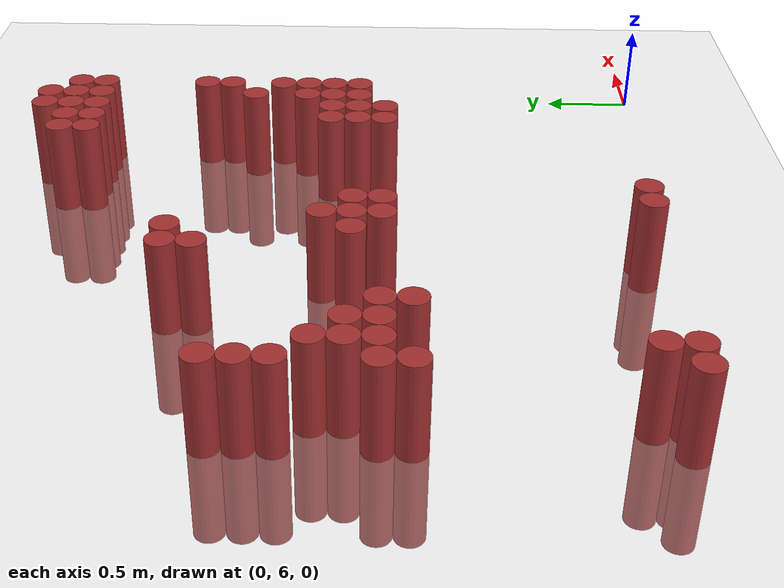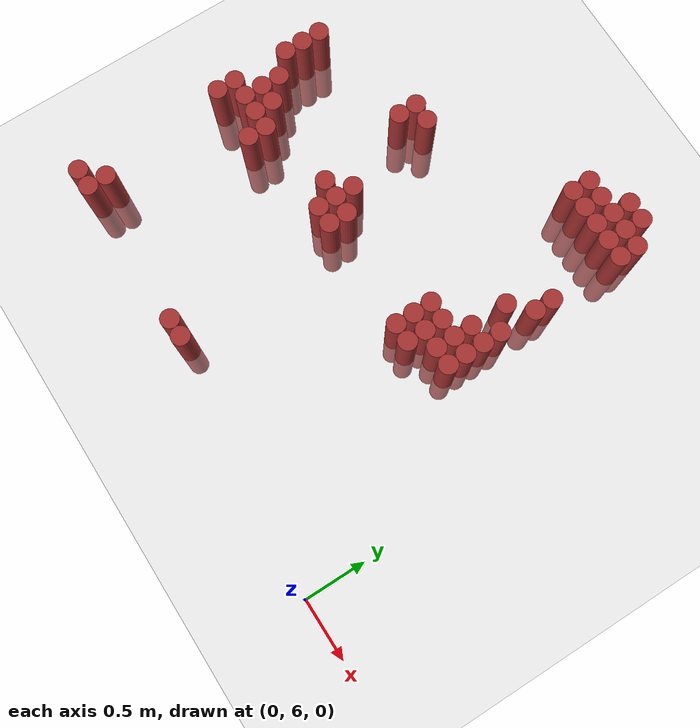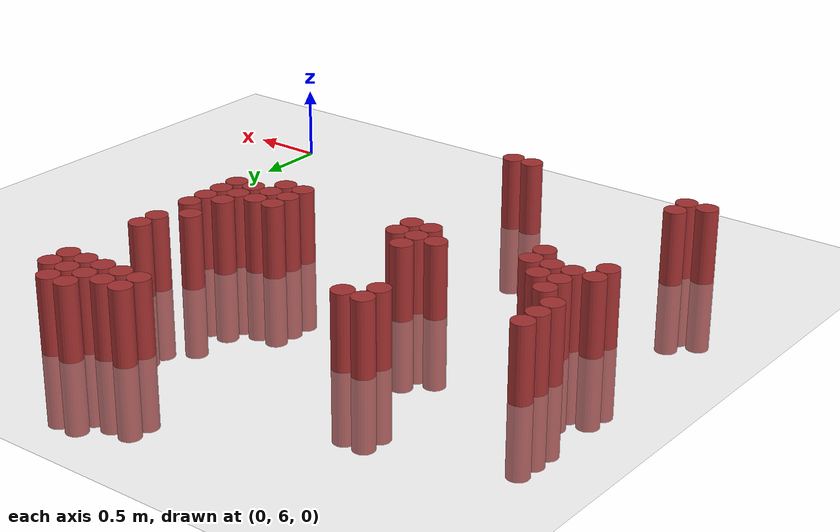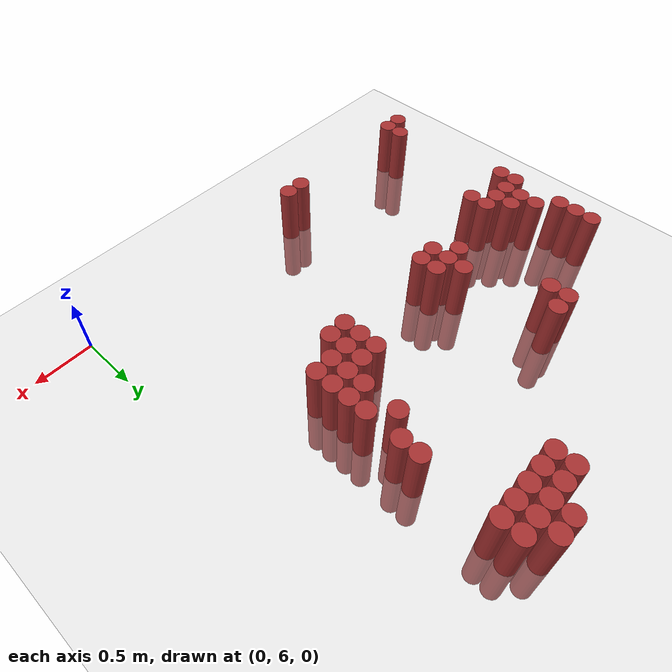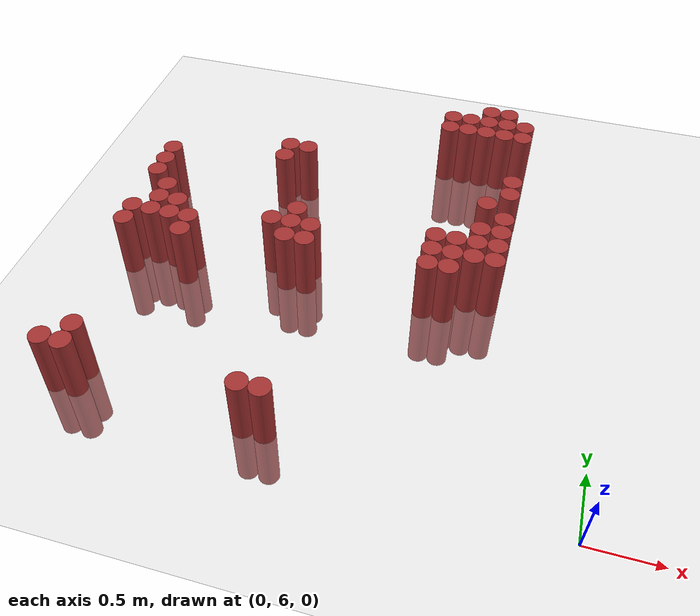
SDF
<sdf version="1.6">
 <world name="default">
  <model name="ground_plane">
   <static>1</static>
   <link name="link">
    <collision name="collision">
     <geometry><plane><normal>0 0 1</normal><size>100 100</size></plane></geometry>
     <surface><friction><ode><mu>100</mu><mu2>50</mu2></ode></friction></surface>
    </collision>
    <visual name="visual">
     <cast_shadows>0</cast_shadows>
     <geometry><plane><normal>0 0 1</normal><size>100 100</size></plane></geometry>
     <material>
      <script><uri>file://media/materials/scripts/gazebo.material</uri><name>Gazebo/Grey</name></script>
     </material>
    </visual>
   </link>
  </model>
  <model name="unit_cylinder_181">
   <static>1</static>
   <pose>-3.525000 6.225000 0.000000 0.000000 0.000000 0.000000</pose>
   <link name="link">
    <inertial>
     <mass>1</mass>
     <inertia><ixx>0.145833</ixx><ixy>0</ixy><ixz>0</ixz><iyy>0.145833</iyy><iyz>0</iyz><izz>0.125</izz></inertia>
    </inertial>
    <collision name="collision">
     <geometry><cylinder><radius>0.075000</radius><length>1</length></cylinder></geometry>
    </collision>
    <visual name="visual">
     <geometry><cylinder><radius>0.075000</radius><length>1</length></cylinder></geometry>
     <material>
      <ambient>0.648000 0.192000 0.192000 1</ambient>
      <diffuse>0.648000 0.192000 0.192000 1</diffuse>
     </material>
     <material>
      <script><name>Gazebo/Grey</name><uri>file://media/materials/scripts/gazebo.material</uri></script>
     </material>
    </visual>
   </link>
  </model>
  <model name="unit_cylinder_182">
   <static>1</static>
   <pose>-3.525000 7.425000 0.000000 0.000000 0.000000 0.000000</pose>
   <link name="link">
    <inertial>
     <mass>1</mass>
     <inertia><ixx>0.145833</ixx><ixy>0</ixy><ixz>0</ixz><iyy>0.145833</iyy><iyz>0</iyz><izz>0.125</izz></inertia>
    </inertial>
    <collision name="collision">
     <geometry><cylinder><radius>0.075000</radius><length>1</length></cylinder></geometry>
    </collision>
    <visual name="visual">
     <geometry><cylinder><radius>0.075000</radius><length>1</length></cylinder></geometry>
     <material>
      <ambient>0.648000 0.192000 0.192000 1</ambient>
      <diffuse>0.648000 0.192000 0.192000 1</diffuse>
     </material>
     <material>
      <script><name>Gazebo/Grey</name><uri>file://media/materials/scripts/gazebo.material</uri></script>
     </material>
    </visual>
   </link>
  </model>
  <model name="unit_cylinder_183">
   <static>1</static>
   <pose>-3.525000 7.575000 0.000000 0.000000 0.000000 0.000000</pose>
   <link name="link">
    <inertial>
     <mass>1</mass>
     <inertia><ixx>0.145833</ixx><ixy>0</ixy><ixz>0</ixz><iyy>0.145833</iyy><iyz>0</iyz><izz>0.125</izz></inertia>
    </inertial>
    <collision name="collision">
     <geometry><cylinder><radius>0.075000</radius><length>1</length></cylinder></geometry>
    </collision>
    <visual name="visual">
     <geometry><cylinder><radius>0.075000</radius><length>1</length></cylinder></geometry>
     <material>
      <ambient>0.648000 0.192000 0.192000 1</ambient>
      <diffuse>0.648000 0.192000 0.192000 1</diffuse>
     </material>
     <material>
      <script><name>Gazebo/Grey</name><uri>file://media/materials/scripts/gazebo.material</uri></script>
     </material>
    </visual>
   </link>
  </model>
  <model name="unit_cylinder_184">
   <static>1</static>
   <pose>-3.525000 8.025000 0.000000 0.000000 0.000000 0.000000</pose>
   <link name="link">
    <inertial>
     <mass>1</mass>
     <inertia><ixx>0.145833</ixx><ixy>0</ixy><ixz>0</ixz><iyy>0.145833</iyy><iyz>0</iyz><izz>0.125</izz></inertia>
    </inertial>
    <collision name="collision">
     <geometry><cylinder><radius>0.075000</radius><length>1</length></cylinder></geometry>
    </collision>
    <visual name="visual">
     <geometry><cylinder><radius>0.075000</radius><length>1</length></cylinder></geometry>
     <material>
      <ambient>0.648000 0.192000 0.192000 1</ambient>
      <diffuse>0.648000 0.192000 0.192000 1</diffuse>
     </material>
     <material>
      <script><name>Gazebo/Grey</name><uri>file://media/materials/scripts/gazebo.material</uri></script>
     </material>
    </visual>
   </link>
  </model>
  <model name="unit_cylinder_185">
   <static>1</static>
   <pose>-3.525000 8.175000 0.000000 0.000000 0.000000 0.000000</pose>
   <link name="link">
    <inertial>
     <mass>1</mass>
     <inertia><ixx>0.145833</ixx><ixy>0</ixy><ixz>0</ixz><iyy>0.145833</iyy><iyz>0</iyz><izz>0.125</izz></inertia>
    </inertial>
    <collision name="collision">
     <geometry><cylinder><radius>0.075000</radius><length>1</length></cylinder></geometry>
    </collision>
    <visual name="visual">
     <geometry><cylinder><radius>0.075000</radius><length>1</length></cylinder></geometry>
     <material>
      <ambient>0.648000 0.192000 0.192000 1</ambient>
      <diffuse>0.648000 0.192000 0.192000 1</diffuse>
     </material>
     <material>
      <script><name>Gazebo/Grey</name><uri>file://media/materials/scripts/gazebo.material</uri></script>
     </material>
    </visual>
   </link>
  </model>
  <model name="unit_cylinder_186">
   <static>1</static>
   <pose>-3.525000 8.325000 0.000000 0.000000 0.000000 0.000000</pose>
   <link name="link">
    <inertial>
     <mass>1</mass>
     <inertia><ixx>0.145833</ixx><ixy>0</ixy><ixz>0</ixz><iyy>0.145833</iyy><iyz>0</iyz><izz>0.125</izz></inertia>
    </inertial>
    <collision name="collision">
     <geometry><cylinder><radius>0.075000</radius><length>1</length></cylinder></geometry>
    </collision>
    <visual name="visual">
     <geometry><cylinder><radius>0.075000</radius><length>1</length></cylinder></geometry>
     <material>
      <ambient>0.648000 0.192000 0.192000 1</ambient>
      <diffuse>0.648000 0.192000 0.192000 1</diffuse>
     </material>
     <material>
      <script><name>Gazebo/Grey</name><uri>file://media/materials/scripts/gazebo.material</uri></script>
     </material>
    </visual>
   </link>
  </model>
  <model name="unit_cylinder_188">
   <static>1</static>
   <pose>-3.375000 6.225000 0.000000 0.000000 0.000000 0.000000</pose>
   <link name="link">
    <inertial>
     <mass>1</mass>
     <inertia><ixx>0.145833</ixx><ixy>0</ixy><ixz>0</ixz><iyy>0.145833</iyy><iyz>0</iyz><izz>0.125</izz></inertia>
    </inertial>
    <collision name="collision">
     <geometry><cylinder><radius>0.075000</radius><length>1</length></cylinder></geometry>
    </collision>
    <visual name="visual">
     <geometry><cylinder><radius>0.075000</radius><length>1</length></cylinder></geometry>
     <material>
      <ambient>0.648000 0.192000 0.192000 1</ambient>
      <diffuse>0.648000 0.192000 0.192000 1</diffuse>
     </material>
     <material>
      <script><name>Gazebo/Grey</name><uri>file://media/materials/scripts/gazebo.material</uri></script>
     </material>
    </visual>
   </link>
  </model>
  <model name="unit_cylinder_189">
   <static>1</static>
   <pose>-3.375000 6.375000 0.000000 0.000000 0.000000 0.000000</pose>
   <link name="link">
    <inertial>
     <mass>1</mass>
     <inertia><ixx>0.145833</ixx><ixy>0</ixy><ixz>0</ixz><iyy>0.145833</iyy><iyz>0</iyz><izz>0.125</izz></inertia>
    </inertial>
    <collision name="collision">
     <geometry><cylinder><radius>0.075000</radius><length>1</length></cylinder></geometry>
    </collision>
    <visual name="visual">
     <geometry><cylinder><radius>0.075000</radius><length>1</length></cylinder></geometry>
     <material>
      <ambient>0.648000 0.192000 0.192000 1</ambient>
      <diffuse>0.648000 0.192000 0.192000 1</diffuse>
     </material>
     <material>
      <script><name>Gazebo/Grey</name><uri>file://media/materials/scripts/gazebo.material</uri></script>
     </material>
    </visual>
   </link>
  </model>
  <model name="unit_cylinder_190">
   <static>1</static>
   <pose>-3.375000 7.575000 0.000000 0.000000 0.000000 0.000000</pose>
   <link name="link">
    <inertial>
     <mass>1</mass>
     <inertia><ixx>0.145833</ixx><ixy>0</ixy><ixz>0</ixz><iyy>0.145833</iyy><iyz>0</iyz><izz>0.125</izz></inertia>
    </inertial>
    <collision name="collision">
     <geometry><cylinder><radius>0.075000</radius><length>1</length></cylinder></geometry>
    </collision>
    <visual name="visual">
     <geometry><cylinder><radius>0.075000</radius><length>1</length></cylinder></geometry>
     <material>
      <ambient>0.648000 0.192000 0.192000 1</ambient>
      <diffuse>0.648000 0.192000 0.192000 1</diffuse>
     </material>
     <material>
      <script><name>Gazebo/Grey</name><uri>file://media/materials/scripts/gazebo.material</uri></script>
     </material>
    </visual>
   </link>
  </model>
  <model name="unit_cylinder_191">
   <static>1</static>
   <pose>-3.375000 7.725000 0.000000 0.000000 0.000000 0.000000</pose>
   <link name="link">
    <inertial>
     <mass>1</mass>
     <inertia><ixx>0.145833</ixx><ixy>0</ixy><ixz>0</ixz><iyy>0.145833</iyy><iyz>0</iyz><izz>0.125</izz></inertia>
    </inertial>
    <collision name="collision">
     <geometry><cylinder><radius>0.075000</radius><length>1</length></cylinder></geometry>
    </collision>
    <visual name="visual">
     <geometry><cylinder><radius>0.075000</radius><length>1</length></cylinder></geometry>
     <material>
      <ambient>0.648000 0.192000 0.192000 1</ambient>
      <diffuse>0.648000 0.192000 0.192000 1</diffuse>
     </material>
     <material>
      <script><name>Gazebo/Grey</name><uri>file://media/materials/scripts/gazebo.material</uri></script>
     </material>
    </visual>
   </link>
  </model>
  <model name="unit_cylinder_192">
   <static>1</static>
   <pose>-3.375000 7.875000 0.000000 0.000000 0.000000 0.000000</pose>
   <link name="link">
    <inertial>
     <mass>1</mass>
     <inertia><ixx>0.145833</ixx><ixy>0</ixy><ixz>0</ixz><iyy>0.145833</iyy><iyz>0</iyz><izz>0.125</izz></inertia>
    </inertial>
    <collision name="collision">
     <geometry><cylinder><radius>0.075000</radius><length>1</length></cylinder></geometry>
    </collision>
    <visual name="visual">
     <geometry><cylinder><radius>0.075000</radius><length>1</length></cylinder></geometry>
     <material>
      <ambient>0.648000 0.192000 0.192000 1</ambient>
      <diffuse>0.648000 0.192000 0.192000 1</diffuse>
     </material>
     <material>
      <script><name>Gazebo/Grey</name><uri>file://media/materials/scripts/gazebo.material</uri></script>
     </material>
    </visual>
   </link>
  </model>
  <model name="unit_cylinder_193">
   <static>1</static>
   <pose>-3.225000 7.575000 0.000000 0.000000 0.000000 0.000000</pose>
   <link name="link">
    <inertial>
     <mass>1</mass>
     <inertia><ixx>0.145833</ixx><ixy>0</ixy><ixz>0</ixz><iyy>0.145833</iyy><iyz>0</iyz><izz>0.125</izz></inertia>
    </inertial>
    <collision name="collision">
     <geometry><cylinder><radius>0.075000</radius><length>1</length></cylinder></geometry>
    </collision>
    <visual name="visual">
     <geometry><cylinder><radius>0.075000</radius><length>1</length></cylinder></geometry>
     <material>
      <ambient>0.648000 0.192000 0.192000 1</ambient>
      <diffuse>0.648000 0.192000 0.192000 1</diffuse>
     </material>
     <material>
      <script><name>Gazebo/Grey</name><uri>file://media/materials/scripts/gazebo.material</uri></script>
     </material>
    </visual>
   </link>
  </model>
  <model name="unit_cylinder_194">
   <static>1</static>
   <pose>-3.225000 7.725000 0.000000 0.000000 0.000000 0.000000</pose>
   <link name="link">
    <inertial>
     <mass>1</mass>
     <inertia><ixx>0.145833</ixx><ixy>0</ixy><ixz>0</ixz><iyy>0.145833</iyy><iyz>0</iyz><izz>0.125</izz></inertia>
    </inertial>
    <collision name="collision">
     <geometry><cylinder><radius>0.075000</radius><length>1</length></cylinder></geometry>
    </collision>
    <visual name="visual">
     <geometry><cylinder><radius>0.075000</radius><length>1</length></cylinder></geometry>
     <material>
      <ambient>0.648000 0.192000 0.192000 1</ambient>
      <diffuse>0.648000 0.192000 0.192000 1</diffuse>
     </material>
     <material>
      <script><name>Gazebo/Grey</name><uri>file://media/materials/scripts/gazebo.material</uri></script>
     </material>
    </visual>
   </link>
  </model>
  <model name="unit_cylinder_195">
   <static>1</static>
   <pose>-3.075000 7.425000 0.000000 0.000000 0.000000 0.000000</pose>
   <link name="link">
    <inertial>
     <mass>1</mass>
     <inertia><ixx>0.145833</ixx><ixy>0</ixy><ixz>0</ixz><iyy>0.145833</iyy><iyz>0</iyz><izz>0.125</izz></inertia>
    </inertial>
    <collision name="collision">
     <geometry><cylinder><radius>0.075000</radius><length>1</length></cylinder></geometry>
    </collision>
    <visual name="visual">
     <geometry><cylinder><radius>0.075000</radius><length>1</length></cylinder></geometry>
     <material>
      <ambient>0.648000 0.192000 0.192000 1</ambient>
      <diffuse>0.648000 0.192000 0.192000 1</diffuse>
     </material>
     <material>
      <script><name>Gazebo/Grey</name><uri>file://media/materials/scripts/gazebo.material</uri></script>
     </material>
    </visual>
   </link>
  </model>
  <model name="unit_cylinder_196">
   <static>1</static>
   <pose>-3.075000 7.575000 0.000000 0.000000 0.000000 0.000000</pose>
   <link name="link">
    <inertial>
     <mass>1</mass>
     <inertia><ixx>0.145833</ixx><ixy>0</ixy><ixz>0</ixz><iyy>0.145833</iyy><iyz>0</iyz><izz>0.125</izz></inertia>
    </inertial>
    <collision name="collision">
     <geometry><cylinder><radius>0.075000</radius><length>1</length></cylinder></geometry>
    </collision>
    <visual name="visual">
     <geometry><cylinder><radius>0.075000</radius><length>1</length></cylinder></geometry>
     <material>
      <ambient>0.648000 0.192000 0.192000 1</ambient>
      <diffuse>0.648000 0.192000 0.192000 1</diffuse>
     </material>
     <material>
      <script><name>Gazebo/Grey</name><uri>file://media/materials/scripts/gazebo.material</uri></script>
     </material>
    </visual>
   </link>
  </model>
  <model name="unit_cylinder_201">
   <static>1</static>
   <pose>-2.625000 8.475000 0.000000 0.000000 0.000000 0.000000</pose>
   <link name="link">
    <inertial>
     <mass>1</mass>
     <inertia><ixx>0.145833</ixx><ixy>0</ixy><ixz>0</ixz><iyy>0.145833</iyy><iyz>0</iyz><izz>0.125</izz></inertia>
    </inertial>
    <collision name="collision">
     <geometry><cylinder><radius>0.075000</radius><length>1</length></cylinder></geometry>
    </collision>
    <visual name="visual">
     <geometry><cylinder><radius>0.075000</radius><length>1</length></cylinder></geometry>
     <material>
      <ambient>0.648000 0.192000 0.192000 1</ambient>
      <diffuse>0.648000 0.192000 0.192000 1</diffuse>
     </material>
     <material>
      <script><name>Gazebo/Grey</name><uri>file://media/materials/scripts/gazebo.material</uri></script>
     </material>
    </visual>
   </link>
  </model>
  <model name="unit_cylinder_202">
   <static>1</static>
   <pose>-2.625000 8.625000 0.000000 0.000000 0.000000 0.000000</pose>
   <link name="link">
    <inertial>
     <mass>1</mass>
     <inertia><ixx>0.145833</ixx><ixy>0</ixy><ixz>0</ixz><iyy>0.145833</iyy><iyz>0</iyz><izz>0.125</izz></inertia>
    </inertial>
    <collision name="collision">
     <geometry><cylinder><radius>0.075000</radius><length>1</length></cylinder></geometry>
    </collision>
    <visual name="visual">
     <geometry><cylinder><radius>0.075000</radius><length>1</length></cylinder></geometry>
     <material>
      <ambient>0.648000 0.192000 0.192000 1</ambient>
      <diffuse>0.648000 0.192000 0.192000 1</diffuse>
     </material>
     <material>
      <script><name>Gazebo/Grey</name><uri>file://media/materials/scripts/gazebo.material</uri></script>
     </material>
    </visual>
   </link>
  </model>
  <model name="unit_cylinder_203">
   <static>1</static>
   <pose>-2.475000 7.725000 0.000000 0.000000 0.000000 0.000000</pose>
   <link name="link">
    <inertial>
     <mass>1</mass>
     <inertia><ixx>0.145833</ixx><ixy>0</ixy><ixz>0</ixz><iyy>0.145833</iyy><iyz>0</iyz><izz>0.125</izz></inertia>
    </inertial>
    <collision name="collision">
     <geometry><cylinder><radius>0.075000</radius><length>1</length></cylinder></geometry>
    </collision>
    <visual name="visual">
     <geometry><cylinder><radius>0.075000</radius><length>1</length></cylinder></geometry>
     <material>
      <ambient>0.648000 0.192000 0.192000 1</ambient>
      <diffuse>0.648000 0.192000 0.192000 1</diffuse>
     </material>
     <material>
      <script><name>Gazebo/Grey</name><uri>file://media/materials/scripts/gazebo.material</uri></script>
     </material>
    </visual>
   </link>
  </model>
  <model name="unit_cylinder_204">
   <static>1</static>
   <pose>-2.475000 8.625000 0.000000 0.000000 0.000000 0.000000</pose>
   <link name="link">
    <inertial>
     <mass>1</mass>
     <inertia><ixx>0.145833</ixx><ixy>0</ixy><ixz>0</ixz><iyy>0.145833</iyy><iyz>0</iyz><izz>0.125</izz></inertia>
    </inertial>
    <collision name="collision">
     <geometry><cylinder><radius>0.075000</radius><length>1</length></cylinder></geometry>
    </collision>
    <visual name="visual">
     <geometry><cylinder><radius>0.075000</radius><length>1</length></cylinder></geometry>
     <material>
      <ambient>0.648000 0.192000 0.192000 1</ambient>
      <diffuse>0.648000 0.192000 0.192000 1</diffuse>
     </material>
     <material>
      <script><name>Gazebo/Grey</name><uri>file://media/materials/scripts/gazebo.material</uri></script>
     </material>
    </visual>
   </link>
  </model>
  <model name="unit_cylinder_208">
   <static>1</static>
   <pose>-2.325000 7.575000 0.000000 0.000000 0.000000 0.000000</pose>
   <link name="link">
    <inertial>
     <mass>1</mass>
     <inertia><ixx>0.145833</ixx><ixy>0</ixy><ixz>0</ixz><iyy>0.145833</iyy><iyz>0</iyz><izz>0.125</izz></inertia>
    </inertial>
    <collision name="collision">
     <geometry><cylinder><radius>0.075000</radius><length>1</length></cylinder></geometry>
    </collision>
    <visual name="visual">
     <geometry><cylinder><radius>0.075000</radius><length>1</length></cylinder></geometry>
     <material>
      <ambient>0.648000 0.192000 0.192000 1</ambient>
      <diffuse>0.648000 0.192000 0.192000 1</diffuse>
     </material>
     <material>
      <script><name>Gazebo/Grey</name><uri>file://media/materials/scripts/gazebo.material</uri></script>
     </material>
    </visual>
   </link>
  </model>
  <model name="unit_cylinder_209">
   <static>1</static>
   <pose>-2.325000 7.725000 0.000000 0.000000 0.000000 0.000000</pose>
   <link name="link">
    <inertial>
     <mass>1</mass>
     <inertia><ixx>0.145833</ixx><ixy>0</ixy><ixz>0</ixz><iyy>0.145833</iyy><iyz>0</iyz><izz>0.125</izz></inertia>
    </inertial>
    <collision name="collision">
     <geometry><cylinder><radius>0.075000</radius><length>1</length></cylinder></geometry>
    </collision>
    <visual name="visual">
     <geometry><cylinder><radius>0.075000</radius><length>1</length></cylinder></geometry>
     <material>
      <ambient>0.648000 0.192000 0.192000 1</ambient>
      <diffuse>0.648000 0.192000 0.192000 1</diffuse>
     </material>
     <material>
      <script><name>Gazebo/Grey</name><uri>file://media/materials/scripts/gazebo.material</uri></script>
     </material>
    </visual>
   </link>
  </model>
  <model name="unit_cylinder_210">
   <static>1</static>
   <pose>-2.325000 7.875000 0.000000 0.000000 0.000000 0.000000</pose>
   <link name="link">
    <inertial>
     <mass>1</mass>
     <inertia><ixx>0.145833</ixx><ixy>0</ixy><ixz>0</ixz><iyy>0.145833</iyy><iyz>0</iyz><izz>0.125</izz></inertia>
    </inertial>
    <collision name="collision">
     <geometry><cylinder><radius>0.075000</radius><length>1</length></cylinder></geometry>
    </collision>
    <visual name="visual">
     <geometry><cylinder><radius>0.075000</radius><length>1</length></cylinder></geometry>
     <material>
      <ambient>0.648000 0.192000 0.192000 1</ambient>
      <diffuse>0.648000 0.192000 0.192000 1</diffuse>
     </material>
     <material>
      <script><name>Gazebo/Grey</name><uri>file://media/materials/scripts/gazebo.material</uri></script>
     </material>
    </visual>
   </link>
  </model>
  <model name="unit_cylinder_215">
   <static>1</static>
   <pose>-2.175000 6.225000 0.000000 0.000000 0.000000 0.000000</pose>
   <link name="link">
    <inertial>
     <mass>1</mass>
     <inertia><ixx>0.145833</ixx><ixy>0</ixy><ixz>0</ixz><iyy>0.145833</iyy><iyz>0</iyz><izz>0.125</izz></inertia>
    </inertial>
    <collision name="collision">
     <geometry><cylinder><radius>0.075000</radius><length>1</length></cylinder></geometry>
    </collision>
    <visual name="visual">
     <geometry><cylinder><radius>0.075000</radius><length>1</length></cylinder></geometry>
     <material>
      <ambient>0.648000 0.192000 0.192000 1</ambient>
      <diffuse>0.648000 0.192000 0.192000 1</diffuse>
     </material>
     <material>
      <script><name>Gazebo/Grey</name><uri>file://media/materials/scripts/gazebo.material</uri></script>
     </material>
    </visual>
   </link>
  </model>
  <model name="unit_cylinder_216">
   <static>1</static>
   <pose>-2.175000 7.575000 0.000000 0.000000 0.000000 0.000000</pose>
   <link name="link">
    <inertial>
     <mass>1</mass>
     <inertia><ixx>0.145833</ixx><ixy>0</ixy><ixz>0</ixz><iyy>0.145833</iyy><iyz>0</iyz><izz>0.125</izz></inertia>
    </inertial>
    <collision name="collision">
     <geometry><cylinder><radius>0.075000</radius><length>1</length></cylinder></geometry>
    </collision>
    <visual name="visual">
     <geometry><cylinder><radius>0.075000</radius><length>1</length></cylinder></geometry>
     <material>
      <ambient>0.648000 0.192000 0.192000 1</ambient>
      <diffuse>0.648000 0.192000 0.192000 1</diffuse>
     </material>
     <material>
      <script><name>Gazebo/Grey</name><uri>file://media/materials/scripts/gazebo.material</uri></script>
     </material>
    </visual>
   </link>
  </model>
  <model name="unit_cylinder_217">
   <static>1</static>
   <pose>-2.175000 7.725000 0.000000 0.000000 0.000000 0.000000</pose>
   <link name="link">
    <inertial>
     <mass>1</mass>
     <inertia><ixx>0.145833</ixx><ixy>0</ixy><ixz>0</ixz><iyy>0.145833</iyy><iyz>0</iyz><izz>0.125</izz></inertia>
    </inertial>
    <collision name="collision">
     <geometry><cylinder><radius>0.075000</radius><length>1</length></cylinder></geometry>
    </collision>
    <visual name="visual">
     <geometry><cylinder><radius>0.075000</radius><length>1</length></cylinder></geometry>
     <material>
      <ambient>0.648000 0.192000 0.192000 1</ambient>
      <diffuse>0.648000 0.192000 0.192000 1</diffuse>
     </material>
     <material>
      <script><name>Gazebo/Grey</name><uri>file://media/materials/scripts/gazebo.material</uri></script>
     </material>
    </visual>
   </link>
  </model>
  <model name="unit_cylinder_220">
   <static>1</static>
   <pose>-2.025000 6.225000 0.000000 0.000000 0.000000 0.000000</pose>
   <link name="link">
    <inertial>
     <mass>1</mass>
     <inertia><ixx>0.145833</ixx><ixy>0</ixy><ixz>0</ixz><iyy>0.145833</iyy><iyz>0</iyz><izz>0.125</izz></inertia>
    </inertial>
    <collision name="collision">
     <geometry><cylinder><radius>0.075000</radius><length>1</length></cylinder></geometry>
    </collision>
    <visual name="visual">
     <geometry><cylinder><radius>0.075000</radius><length>1</length></cylinder></geometry>
     <material>
      <ambient>0.648000 0.192000 0.192000 1</ambient>
      <diffuse>0.648000 0.192000 0.192000 1</diffuse>
     </material>
     <material>
      <script><name>Gazebo/Grey</name><uri>file://media/materials/scripts/gazebo.material</uri></script>
     </material>
    </visual>
   </link>
  </model>
  <model name="unit_cylinder_222">
   <static>1</static>
   <pose>-1.425000 9.225000 0.000000 0.000000 0.000000 0.000000</pose>
   <link name="link">
    <inertial>
     <mass>1</mass>
     <inertia><ixx>0.145833</ixx><ixy>0</ixy><ixz>0</ixz><iyy>0.145833</iyy><iyz>0</iyz><izz>0.125</izz></inertia>
    </inertial>
    <collision name="collision">
     <geometry><cylinder><radius>0.075000</radius><length>1</length></cylinder></geometry>
    </collision>
    <visual name="visual">
     <geometry><cylinder><radius>0.075000</radius><length>1</length></cylinder></geometry>
     <material>
      <ambient>0.648000 0.192000 0.192000 1</ambient>
      <diffuse>0.648000 0.192000 0.192000 1</diffuse>
     </material>
     <material>
      <script><name>Gazebo/Grey</name><uri>file://media/materials/scripts/gazebo.material</uri></script>
     </material>
    </visual>
   </link>
  </model>
  <model name="unit_cylinder_223">
   <static>1</static>
   <pose>-1.425000 9.375000 0.000000 0.000000 0.000000 0.000000</pose>
   <link name="link">
    <inertial>
     <mass>1</mass>
     <inertia><ixx>0.145833</ixx><ixy>0</ixy><ixz>0</ixz><iyy>0.145833</iyy><iyz>0</iyz><izz>0.125</izz></inertia>
    </inertial>
    <collision name="collision">
     <geometry><cylinder><radius>0.075000</radius><length>1</length></cylinder></geometry>
    </collision>
    <visual name="visual">
     <geometry><cylinder><radius>0.075000</radius><length>1</length></cylinder></geometry>
     <material>
      <ambient>0.648000 0.192000 0.192000 1</ambient>
      <diffuse>0.648000 0.192000 0.192000 1</diffuse>
     </material>
     <material>
      <script><name>Gazebo/Grey</name><uri>file://media/materials/scripts/gazebo.material</uri></script>
     </material>
    </visual>
   </link>
  </model>
  <model name="unit_cylinder_224">
   <static>1</static>
   <pose>-1.275000 7.575000 0.000000 0.000000 0.000000 0.000000</pose>
   <link name="link">
    <inertial>
     <mass>1</mass>
     <inertia><ixx>0.145833</ixx><ixy>0</ixy><ixz>0</ixz><iyy>0.145833</iyy><iyz>0</iyz><izz>0.125</izz></inertia>
    </inertial>
    <collision name="collision">
     <geometry><cylinder><radius>0.075000</radius><length>1</length></cylinder></geometry>
    </collision>
    <visual name="visual">
     <geometry><cylinder><radius>0.075000</radius><length>1</length></cylinder></geometry>
     <material>
      <ambient>0.648000 0.192000 0.192000 1</ambient>
      <diffuse>0.648000 0.192000 0.192000 1</diffuse>
     </material>
     <material>
      <script><name>Gazebo/Grey</name><uri>file://media/materials/scripts/gazebo.material</uri></script>
     </material>
    </visual>
   </link>
  </model>
  <model name="unit_cylinder_225">
   <static>1</static>
   <pose>-1.275000 7.725000 0.000000 0.000000 0.000000 0.000000</pose>
   <link name="link">
    <inertial>
     <mass>1</mass>
     <inertia><ixx>0.145833</ixx><ixy>0</ixy><ixz>0</ixz><iyy>0.145833</iyy><iyz>0</iyz><izz>0.125</izz></inertia>
    </inertial>
    <collision name="collision">
     <geometry><cylinder><radius>0.075000</radius><length>1</length></cylinder></geometry>
    </collision>
    <visual name="visual">
     <geometry><cylinder><radius>0.075000</radius><length>1</length></cylinder></geometry>
     <material>
      <ambient>0.648000 0.192000 0.192000 1</ambient>
      <diffuse>0.648000 0.192000 0.192000 1</diffuse>
     </material>
     <material>
      <script><name>Gazebo/Grey</name><uri>file://media/materials/scripts/gazebo.material</uri></script>
     </material>
    </visual>
   </link>
  </model>
  <model name="unit_cylinder_226">
   <static>1</static>
   <pose>-1.275000 7.875000 0.000000 0.000000 0.000000 0.000000</pose>
   <link name="link">
    <inertial>
     <mass>1</mass>
     <inertia><ixx>0.145833</ixx><ixy>0</ixy><ixz>0</ixz><iyy>0.145833</iyy><iyz>0</iyz><izz>0.125</izz></inertia>
    </inertial>
    <collision name="collision">
     <geometry><cylinder><radius>0.075000</radius><length>1</length></cylinder></geometry>
    </collision>
    <visual name="visual">
     <geometry><cylinder><radius>0.075000</radius><length>1</length></cylinder></geometry>
     <material>
      <ambient>0.648000 0.192000 0.192000 1</ambient>
      <diffuse>0.648000 0.192000 0.192000 1</diffuse>
     </material>
     <material>
      <script><name>Gazebo/Grey</name><uri>file://media/materials/scripts/gazebo.material</uri></script>
     </material>
    </visual>
   </link>
  </model>
  <model name="unit_cylinder_227">
   <static>1</static>
   <pose>-1.275000 9.225000 0.000000 0.000000 0.000000 0.000000</pose>
   <link name="link">
    <inertial>
     <mass>1</mass>
     <inertia><ixx>0.145833</ixx><ixy>0</ixy><ixz>0</ixz><iyy>0.145833</iyy><iyz>0</iyz><izz>0.125</izz></inertia>
    </inertial>
    <collision name="collision">
     <geometry><cylinder><radius>0.075000</radius><length>1</length></cylinder></geometry>
    </collision>
    <visual name="visual">
     <geometry><cylinder><radius>0.075000</radius><length>1</length></cylinder></geometry>
     <material>
      <ambient>0.648000 0.192000 0.192000 1</ambient>
      <diffuse>0.648000 0.192000 0.192000 1</diffuse>
     </material>
     <material>
      <script><name>Gazebo/Grey</name><uri>file://media/materials/scripts/gazebo.material</uri></script>
     </material>
    </visual>
   </link>
  </model>
  <model name="unit_cylinder_228">
   <static>1</static>
   <pose>-1.275000 9.375000 0.000000 0.000000 0.000000 0.000000</pose>
   <link name="link">
    <inertial>
     <mass>1</mass>
     <inertia><ixx>0.145833</ixx><ixy>0</ixy><ixz>0</ixz><iyy>0.145833</iyy><iyz>0</iyz><izz>0.125</izz></inertia>
    </inertial>
    <collision name="collision">
     <geometry><cylinder><radius>0.075000</radius><length>1</length></cylinder></geometry>
    </collision>
    <visual name="visual">
     <geometry><cylinder><radius>0.075000</radius><length>1</length></cylinder></geometry>
     <material>
      <ambient>0.648000 0.192000 0.192000 1</ambient>
      <diffuse>0.648000 0.192000 0.192000 1</diffuse>
     </material>
     <material>
      <script><name>Gazebo/Grey</name><uri>file://media/materials/scripts/gazebo.material</uri></script>
     </material>
    </visual>
   </link>
  </model>
  <model name="unit_cylinder_229">
   <static>1</static>
   <pose>-1.125000 7.575000 0.000000 0.000000 0.000000 0.000000</pose>
   <link name="link">
    <inertial>
     <mass>1</mass>
     <inertia><ixx>0.145833</ixx><ixy>0</ixy><ixz>0</ixz><iyy>0.145833</iyy><iyz>0</iyz><izz>0.125</izz></inertia>
    </inertial>
    <collision name="collision">
     <geometry><cylinder><radius>0.075000</radius><length>1</length></cylinder></geometry>
    </collision>
    <visual name="visual">
     <geometry><cylinder><radius>0.075000</radius><length>1</length></cylinder></geometry>
     <material>
      <ambient>0.648000 0.192000 0.192000 1</ambient>
      <diffuse>0.648000 0.192000 0.192000 1</diffuse>
     </material>
     <material>
      <script><name>Gazebo/Grey</name><uri>file://media/materials/scripts/gazebo.material</uri></script>
     </material>
    </visual>
   </link>
  </model>
  <model name="unit_cylinder_230">
   <static>1</static>
   <pose>-1.125000 7.725000 0.000000 0.000000 0.000000 0.000000</pose>
   <link name="link">
    <inertial>
     <mass>1</mass>
     <inertia><ixx>0.145833</ixx><ixy>0</ixy><ixz>0</ixz><iyy>0.145833</iyy><iyz>0</iyz><izz>0.125</izz></inertia>
    </inertial>
    <collision name="collision">
     <geometry><cylinder><radius>0.075000</radius><length>1</length></cylinder></geometry>
    </collision>
    <visual name="visual">
     <geometry><cylinder><radius>0.075000</radius><length>1</length></cylinder></geometry>
     <material>
      <ambient>0.648000 0.192000 0.192000 1</ambient>
      <diffuse>0.648000 0.192000 0.192000 1</diffuse>
     </material>
     <material>
      <script><name>Gazebo/Grey</name><uri>file://media/materials/scripts/gazebo.material</uri></script>
     </material>
    </visual>
   </link>
  </model>
  <model name="unit_cylinder_231">
   <static>1</static>
   <pose>-1.125000 7.875000 0.000000 0.000000 0.000000 0.000000</pose>
   <link name="link">
    <inertial>
     <mass>1</mass>
     <inertia><ixx>0.145833</ixx><ixy>0</ixy><ixz>0</ixz><iyy>0.145833</iyy><iyz>0</iyz><izz>0.125</izz></inertia>
    </inertial>
    <collision name="collision">
     <geometry><cylinder><radius>0.075000</radius><length>1</length></cylinder></geometry>
    </collision>
    <visual name="visual">
     <geometry><cylinder><radius>0.075000</radius><length>1</length></cylinder></geometry>
     <material>
      <ambient>0.648000 0.192000 0.192000 1</ambient>
      <diffuse>0.648000 0.192000 0.192000 1</diffuse>
     </material>
     <material>
      <script><name>Gazebo/Grey</name><uri>file://media/materials/scripts/gazebo.material</uri></script>
     </material>
    </visual>
   </link>
  </model>
  <model name="unit_cylinder_232">
   <static>1</static>
   <pose>-1.125000 9.225000 0.000000 0.000000 0.000000 0.000000</pose>
   <link name="link">
    <inertial>
     <mass>1</mass>
     <inertia><ixx>0.145833</ixx><ixy>0</ixy><ixz>0</ixz><iyy>0.145833</iyy><iyz>0</iyz><izz>0.125</izz></inertia>
    </inertial>
    <collision name="collision">
     <geometry><cylinder><radius>0.075000</radius><length>1</length></cylinder></geometry>
    </collision>
    <visual name="visual">
     <geometry><cylinder><radius>0.075000</radius><length>1</length></cylinder></geometry>
     <material>
      <ambient>0.648000 0.192000 0.192000 1</ambient>
      <diffuse>0.648000 0.192000 0.192000 1</diffuse>
     </material>
     <material>
      <script><name>Gazebo/Grey</name><uri>file://media/materials/scripts/gazebo.material</uri></script>
     </material>
    </visual>
   </link>
  </model>
  <model name="unit_cylinder_233">
   <static>1</static>
   <pose>-1.125000 9.375000 0.000000 0.000000 0.000000 0.000000</pose>
   <link name="link">
    <inertial>
     <mass>1</mass>
     <inertia><ixx>0.145833</ixx><ixy>0</ixy><ixz>0</ixz><iyy>0.145833</iyy><iyz>0</iyz><izz>0.125</izz></inertia>
    </inertial>
    <collision name="collision">
     <geometry><cylinder><radius>0.075000</radius><length>1</length></cylinder></geometry>
    </collision>
    <visual name="visual">
     <geometry><cylinder><radius>0.075000</radius><length>1</length></cylinder></geometry>
     <material>
      <ambient>0.648000 0.192000 0.192000 1</ambient>
      <diffuse>0.648000 0.192000 0.192000 1</diffuse>
     </material>
     <material>
      <script><name>Gazebo/Grey</name><uri>file://media/materials/scripts/gazebo.material</uri></script>
     </material>
    </visual>
   </link>
  </model>
  <model name="unit_cylinder_234">
   <static>1</static>
   <pose>-1.125000 9.525000 0.000000 0.000000 0.000000 0.000000</pose>
   <link name="link">
    <inertial>
     <mass>1</mass>
     <inertia><ixx>0.145833</ixx><ixy>0</ixy><ixz>0</ixz><iyy>0.145833</iyy><iyz>0</iyz><izz>0.125</izz></inertia>
    </inertial>
    <collision name="collision">
     <geometry><cylinder><radius>0.075000</radius><length>1</length></cylinder></geometry>
    </collision>
    <visual name="visual">
     <geometry><cylinder><radius>0.075000</radius><length>1</length></cylinder></geometry>
     <material>
      <ambient>0.648000 0.192000 0.192000 1</ambient>
      <diffuse>0.648000 0.192000 0.192000 1</diffuse>
     </material>
     <material>
      <script><name>Gazebo/Grey</name><uri>file://media/materials/scripts/gazebo.material</uri></script>
     </material>
    </visual>
   </link>
  </model>
  <model name="unit_cylinder_235">
   <static>1</static>
   <pose>-0.975000 7.725000 0.000000 0.000000 0.000000 0.000000</pose>
   <link name="link">
    <inertial>
     <mass>1</mass>
     <inertia><ixx>0.145833</ixx><ixy>0</ixy><ixz>0</ixz><iyy>0.145833</iyy><iyz>0</iyz><izz>0.125</izz></inertia>
    </inertial>
    <collision name="collision">
     <geometry><cylinder><radius>0.075000</radius><length>1</length></cylinder></geometry>
    </collision>
    <visual name="visual">
     <geometry><cylinder><radius>0.075000</radius><length>1</length></cylinder></geometry>
     <material>
      <ambient>0.648000 0.192000 0.192000 1</ambient>
      <diffuse>0.648000 0.192000 0.192000 1</diffuse>
     </material>
     <material>
      <script><name>Gazebo/Grey</name><uri>file://media/materials/scripts/gazebo.material</uri></script>
     </material>
    </visual>
   </link>
  </model>
  <model name="unit_cylinder_236">
   <static>1</static>
   <pose>-0.975000 7.875000 0.000000 0.000000 0.000000 0.000000</pose>
   <link name="link">
    <inertial>
     <mass>1</mass>
     <inertia><ixx>0.145833</ixx><ixy>0</ixy><ixz>0</ixz><iyy>0.145833</iyy><iyz>0</iyz><izz>0.125</izz></inertia>
    </inertial>
    <collision name="collision">
     <geometry><cylinder><radius>0.075000</radius><length>1</length></cylinder></geometry>
    </collision>
    <visual name="visual">
     <geometry><cylinder><radius>0.075000</radius><length>1</length></cylinder></geometry>
     <material>
      <ambient>0.648000 0.192000 0.192000 1</ambient>
      <diffuse>0.648000 0.192000 0.192000 1</diffuse>
     </material>
     <material>
      <script><name>Gazebo/Grey</name><uri>file://media/materials/scripts/gazebo.material</uri></script>
     </material>
    </visual>
   </link>
  </model>
  <model name="unit_cylinder_237">
   <static>1</static>
   <pose>-0.975000 8.025000 0.000000 0.000000 0.000000 0.000000</pose>
   <link name="link">
    <inertial>
     <mass>1</mass>
     <inertia><ixx>0.145833</ixx><ixy>0</ixy><ixz>0</ixz><iyy>0.145833</iyy><iyz>0</iyz><izz>0.125</izz></inertia>
    </inertial>
    <collision name="collision">
     <geometry><cylinder><radius>0.075000</radius><length>1</length></cylinder></geometry>
    </collision>
    <visual name="visual">
     <geometry><cylinder><radius>0.075000</radius><length>1</length></cylinder></geometry>
     <material>
      <ambient>0.648000 0.192000 0.192000 1</ambient>
      <diffuse>0.648000 0.192000 0.192000 1</diffuse>
     </material>
     <material>
      <script><name>Gazebo/Grey</name><uri>file://media/materials/scripts/gazebo.material</uri></script>
     </material>
    </visual>
   </link>
  </model>
  <model name="unit_cylinder_238">
   <static>1</static>
   <pose>-0.975000 8.325000 0.000000 0.000000 0.000000 0.000000</pose>
   <link name="link">
    <inertial>
     <mass>1</mass>
     <inertia><ixx>0.145833</ixx><ixy>0</ixy><ixz>0</ixz><iyy>0.145833</iyy><iyz>0</iyz><izz>0.125</izz></inertia>
    </inertial>
    <collision name="collision">
     <geometry><cylinder><radius>0.075000</radius><length>1</length></cylinder></geometry>
    </collision>
    <visual name="visual">
     <geometry><cylinder><radius>0.075000</radius><length>1</length></cylinder></geometry>
     <material>
      <ambient>0.648000 0.192000 0.192000 1</ambient>
      <diffuse>0.648000 0.192000 0.192000 1</diffuse>
     </material>
     <material>
      <script><name>Gazebo/Grey</name><uri>file://media/materials/scripts/gazebo.material</uri></script>
     </material>
    </visual>
   </link>
  </model>
  <model name="unit_cylinder_239">
   <static>1</static>
   <pose>-0.975000 9.225000 0.000000 0.000000 0.000000 0.000000</pose>
   <link name="link">
    <inertial>
     <mass>1</mass>
     <inertia><ixx>0.145833</ixx><ixy>0</ixy><ixz>0</ixz><iyy>0.145833</iyy><iyz>0</iyz><izz>0.125</izz></inertia>
    </inertial>
    <collision name="collision">
     <geometry><cylinder><radius>0.075000</radius><length>1</length></cylinder></geometry>
    </collision>
    <visual name="visual">
     <geometry><cylinder><radius>0.075000</radius><length>1</length></cylinder></geometry>
     <material>
      <ambient>0.648000 0.192000 0.192000 1</ambient>
      <diffuse>0.648000 0.192000 0.192000 1</diffuse>
     </material>
     <material>
      <script><name>Gazebo/Grey</name><uri>file://media/materials/scripts/gazebo.material</uri></script>
     </material>
    </visual>
   </link>
  </model>
  <model name="unit_cylinder_240">
   <static>1</static>
   <pose>-0.975000 9.375000 0.000000 0.000000 0.000000 0.000000</pose>
   <link name="link">
    <inertial>
     <mass>1</mass>
     <inertia><ixx>0.145833</ixx><ixy>0</ixy><ixz>0</ixz><iyy>0.145833</iyy><iyz>0</iyz><izz>0.125</izz></inertia>
    </inertial>
    <collision name="collision">
     <geometry><cylinder><radius>0.075000</radius><length>1</length></cylinder></geometry>
    </collision>
    <visual name="visual">
     <geometry><cylinder><radius>0.075000</radius><length>1</length></cylinder></geometry>
     <material>
      <ambient>0.648000 0.192000 0.192000 1</ambient>
      <diffuse>0.648000 0.192000 0.192000 1</diffuse>
     </material>
     <material>
      <script><name>Gazebo/Grey</name><uri>file://media/materials/scripts/gazebo.material</uri></script>
     </material>
    </visual>
   </link>
  </model>
  <model name="unit_cylinder_241">
   <static>1</static>
   <pose>-0.975000 9.525000 0.000000 0.000000 0.000000 0.000000</pose>
   <link name="link">
    <inertial>
     <mass>1</mass>
     <inertia><ixx>0.145833</ixx><ixy>0</ixy><ixz>0</ixz><iyy>0.145833</iyy><iyz>0</iyz><izz>0.125</izz></inertia>
    </inertial>
    <collision name="collision">
     <geometry><cylinder><radius>0.075000</radius><length>1</length></cylinder></geometry>
    </collision>
    <visual name="visual">
     <geometry><cylinder><radius>0.075000</radius><length>1</length></cylinder></geometry>
     <material>
      <ambient>0.648000 0.192000 0.192000 1</ambient>
      <diffuse>0.648000 0.192000 0.192000 1</diffuse>
     </material>
     <material>
      <script><name>Gazebo/Grey</name><uri>file://media/materials/scripts/gazebo.material</uri></script>
     </material>
    </visual>
   </link>
  </model>
  <model name="unit_cylinder_243">
   <static>1</static>
   <pose>-0.825000 7.725000 0.000000 0.000000 0.000000 0.000000</pose>
   <link name="link">
    <inertial>
     <mass>1</mass>
     <inertia><ixx>0.145833</ixx><ixy>0</ixy><ixz>0</ixz><iyy>0.145833</iyy><iyz>0</iyz><izz>0.125</izz></inertia>
    </inertial>
    <collision name="collision">
     <geometry><cylinder><radius>0.075000</radius><length>1</length></cylinder></geometry>
    </collision>
    <visual name="visual">
     <geometry><cylinder><radius>0.075000</radius><length>1</length></cylinder></geometry>
     <material>
      <ambient>0.648000 0.192000 0.192000 1</ambient>
      <diffuse>0.648000 0.192000 0.192000 1</diffuse>
     </material>
     <material>
      <script><name>Gazebo/Grey</name><uri>file://media/materials/scripts/gazebo.material</uri></script>
     </material>
    </visual>
   </link>
  </model>
  <model name="unit_cylinder_244">
   <static>1</static>
   <pose>-0.825000 7.875000 0.000000 0.000000 0.000000 0.000000</pose>
   <link name="link">
    <inertial>
     <mass>1</mass>
     <inertia><ixx>0.145833</ixx><ixy>0</ixy><ixz>0</ixz><iyy>0.145833</iyy><iyz>0</iyz><izz>0.125</izz></inertia>
    </inertial>
    <collision name="collision">
     <geometry><cylinder><radius>0.075000</radius><length>1</length></cylinder></geometry>
    </collision>
    <visual name="visual">
     <geometry><cylinder><radius>0.075000</radius><length>1</length></cylinder></geometry>
     <material>
      <ambient>0.648000 0.192000 0.192000 1</ambient>
      <diffuse>0.648000 0.192000 0.192000 1</diffuse>
     </material>
     <material>
      <script><name>Gazebo/Grey</name><uri>file://media/materials/scripts/gazebo.material</uri></script>
     </material>
    </visual>
   </link>
  </model>
  <model name="unit_cylinder_245">
   <static>1</static>
   <pose>-0.825000 8.025000 0.000000 0.000000 0.000000 0.000000</pose>
   <link name="link">
    <inertial>
     <mass>1</mass>
     <inertia><ixx>0.145833</ixx><ixy>0</ixy><ixz>0</ixz><iyy>0.145833</iyy><iyz>0</iyz><izz>0.125</izz></inertia>
    </inertial>
    <collision name="collision">
     <geometry><cylinder><radius>0.075000</radius><length>1</length></cylinder></geometry>
    </collision>
    <visual name="visual">
     <geometry><cylinder><radius>0.075000</radius><length>1</length></cylinder></geometry>
     <material>
      <ambient>0.648000 0.192000 0.192000 1</ambient>
      <diffuse>0.648000 0.192000 0.192000 1</diffuse>
     </material>
     <material>
      <script><name>Gazebo/Grey</name><uri>file://media/materials/scripts/gazebo.material</uri></script>
     </material>
    </visual>
   </link>
  </model>
  <model name="unit_cylinder_246">
   <static>1</static>
   <pose>-0.825000 8.175000 0.000000 0.000000 0.000000 0.000000</pose>
   <link name="link">
    <inertial>
     <mass>1</mass>
     <inertia><ixx>0.145833</ixx><ixy>0</ixy><ixz>0</ixz><iyy>0.145833</iyy><iyz>0</iyz><izz>0.125</izz></inertia>
    </inertial>
    <collision name="collision">
     <geometry><cylinder><radius>0.075000</radius><length>1</length></cylinder></geometry>
    </collision>
    <visual name="visual">
     <geometry><cylinder><radius>0.075000</radius><length>1</length></cylinder></geometry>
     <material>
      <ambient>0.648000 0.192000 0.192000 1</ambient>
      <diffuse>0.648000 0.192000 0.192000 1</diffuse>
     </material>
     <material>
      <script><name>Gazebo/Grey</name><uri>file://media/materials/scripts/gazebo.material</uri></script>
     </material>
    </visual>
   </link>
  </model>
  <model name="unit_cylinder_247">
   <static>1</static>
   <pose>-0.825000 8.475000 0.000000 0.000000 0.000000 0.000000</pose>
   <link name="link">
    <inertial>
     <mass>1</mass>
     <inertia><ixx>0.145833</ixx><ixy>0</ixy><ixz>0</ixz><iyy>0.145833</iyy><iyz>0</iyz><izz>0.125</izz></inertia>
    </inertial>
    <collision name="collision">
     <geometry><cylinder><radius>0.075000</radius><length>1</length></cylinder></geometry>
    </collision>
    <visual name="visual">
     <geometry><cylinder><radius>0.075000</radius><length>1</length></cylinder></geometry>
     <material>
      <ambient>0.648000 0.192000 0.192000 1</ambient>
      <diffuse>0.648000 0.192000 0.192000 1</diffuse>
     </material>
     <material>
      <script><name>Gazebo/Grey</name><uri>file://media/materials/scripts/gazebo.material</uri></script>
     </material>
    </visual>
   </link>
  </model>
  <model name="unit_cylinder_248">
   <static>1</static>
   <pose>-0.825000 8.625000 0.000000 0.000000 0.000000 0.000000</pose>
   <link name="link">
    <inertial>
     <mass>1</mass>
     <inertia><ixx>0.145833</ixx><ixy>0</ixy><ixz>0</ixz><iyy>0.145833</iyy><iyz>0</iyz><izz>0.125</izz></inertia>
    </inertial>
    <collision name="collision">
     <geometry><cylinder><radius>0.075000</radius><length>1</length></cylinder></geometry>
    </collision>
    <visual name="visual">
     <geometry><cylinder><radius>0.075000</radius><length>1</length></cylinder></geometry>
     <material>
      <ambient>0.648000 0.192000 0.192000 1</ambient>
      <diffuse>0.648000 0.192000 0.192000 1</diffuse>
     </material>
     <material>
      <script><name>Gazebo/Grey</name><uri>file://media/materials/scripts/gazebo.material</uri></script>
     </material>
    </visual>
   </link>
  </model>
  <model name="unit_cylinder_249">
   <static>1</static>
   <pose>-0.825000 9.225000 0.000000 0.000000 0.000000 0.000000</pose>
   <link name="link">
    <inertial>
     <mass>1</mass>
     <inertia><ixx>0.145833</ixx><ixy>0</ixy><ixz>0</ixz><iyy>0.145833</iyy><iyz>0</iyz><izz>0.125</izz></inertia>
    </inertial>
    <collision name="collision">
     <geometry><cylinder><radius>0.075000</radius><length>1</length></cylinder></geometry>
    </collision>
    <visual name="visual">
     <geometry><cylinder><radius>0.075000</radius><length>1</length></cylinder></geometry>
     <material>
      <ambient>0.648000 0.192000 0.192000 1</ambient>
      <diffuse>0.648000 0.192000 0.192000 1</diffuse>
     </material>
     <material>
      <script><name>Gazebo/Grey</name><uri>file://media/materials/scripts/gazebo.material</uri></script>
     </material>
    </visual>
   </link>
  </model>
  <model name="unit_cylinder_250">
   <static>1</static>
   <pose>-0.825000 9.375000 0.000000 0.000000 0.000000 0.000000</pose>
   <link name="link">
    <inertial>
     <mass>1</mass>
     <inertia><ixx>0.145833</ixx><ixy>0</ixy><ixz>0</ixz><iyy>0.145833</iyy><iyz>0</iyz><izz>0.125</izz></inertia>
    </inertial>
    <collision name="collision">
     <geometry><cylinder><radius>0.075000</radius><length>1</length></cylinder></geometry>
    </collision>
    <visual name="visual">
     <geometry><cylinder><radius>0.075000</radius><length>1</length></cylinder></geometry>
     <material>
      <ambient>0.648000 0.192000 0.192000 1</ambient>
      <diffuse>0.648000 0.192000 0.192000 1</diffuse>
     </material>
     <material>
      <script><name>Gazebo/Grey</name><uri>file://media/materials/scripts/gazebo.material</uri></script>
     </material>
    </visual>
   </link>
  </model>
 </world>
</sdf>
